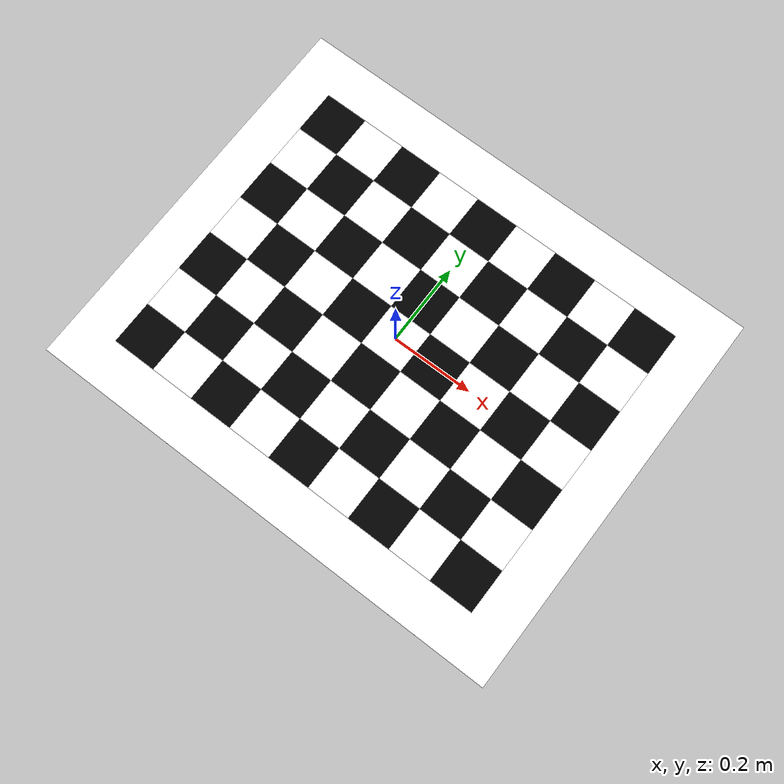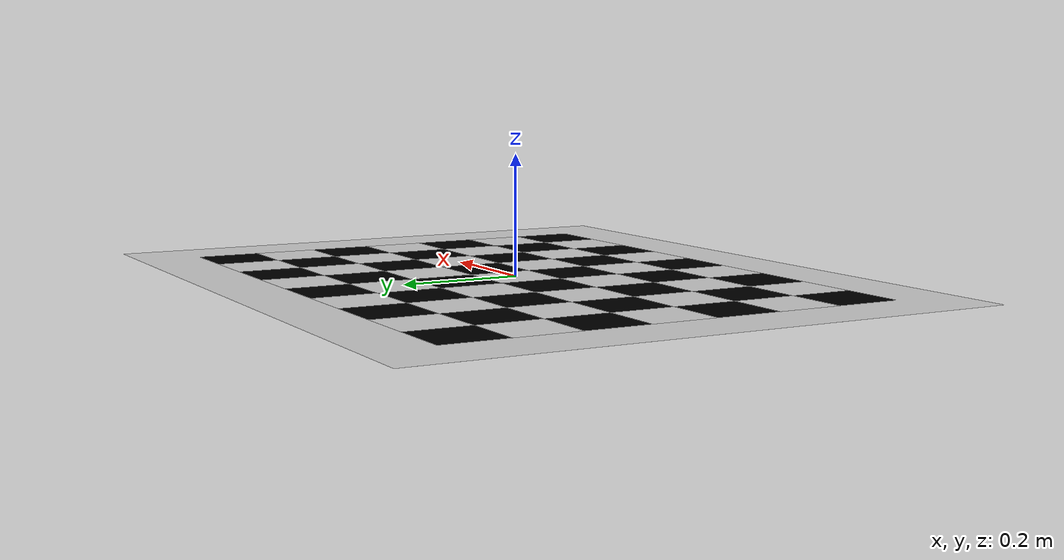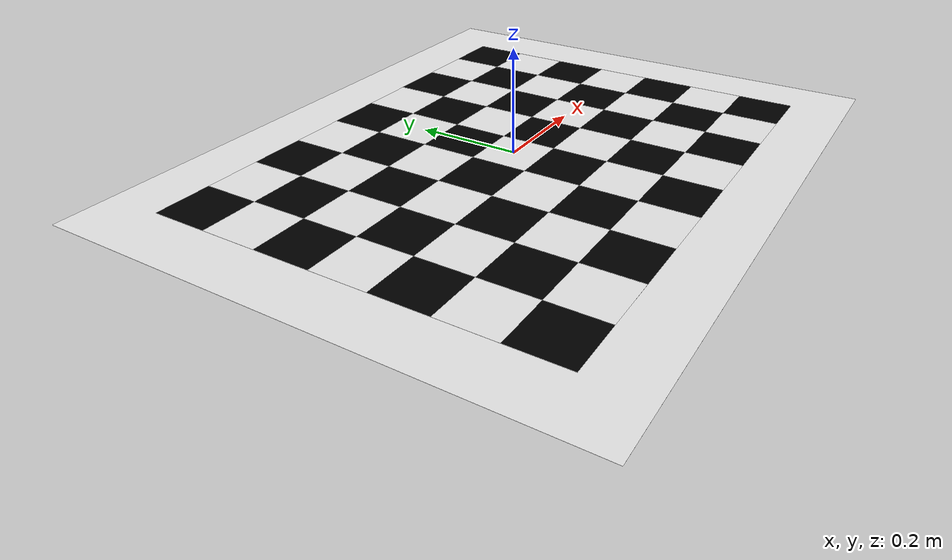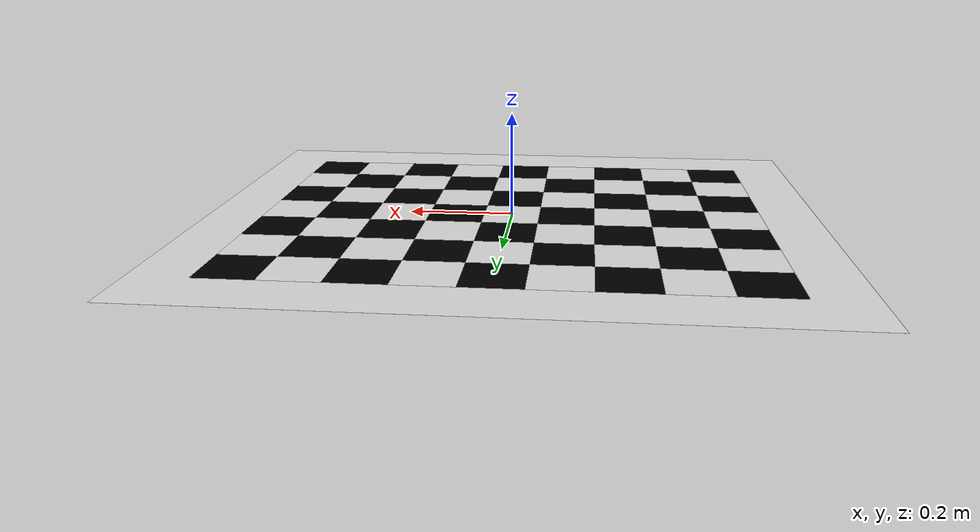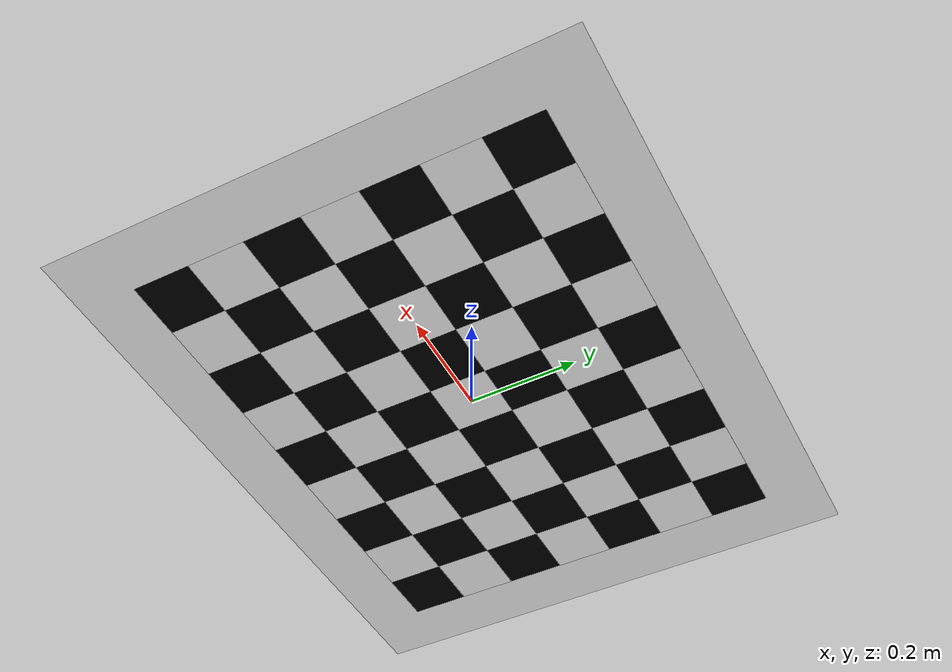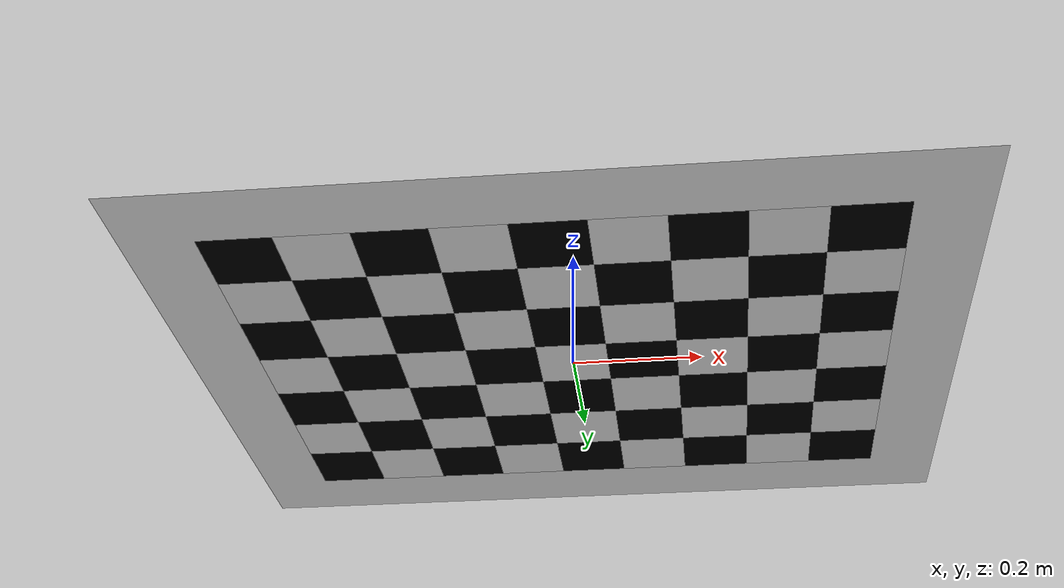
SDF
<?xml version="1.0"?>
<sdf version="1.4">
  <model name="checkerboard_9_7_0_108">
  <static>true</static>
  <link name="checkerboard_9_7_0_108_body">
      <visual name="checker_0_0">
        <pose>-0.432 -0.324 0 0 0 0</pose>
        <geometry>
          <box>
            <size>0.108 0.108 0.0002</size>
          </box>
        </geometry>
        <material>
          <ambient>0 0 0 1</ambient>
          <diffuse>0 0 0 1</diffuse>
          <specular>0 0 0 1</specular>
          <emissive>0 0 0 1</emissive>
        </material>
      </visual>
      <visual name="checker_0_1">
        <pose>-0.432 -0.216 0 0 0 0</pose>
        <geometry>
          <box>
            <size>0.108 0.108 0.0002</size>
          </box>
        </geometry>
        <material>
          <ambient>1 1 1 1</ambient>
          <diffuse>1 1 1 1</diffuse>
          <specular>1 1 1 1</specular>
          <emissive>1 1 1 1</emissive>
        </material>
      </visual>
      <visual name="checker_0_2">
        <pose>-0.432 -0.10799999999999998 0 0 0 0</pose>
        <geometry>
          <box>
            <size>0.108 0.108 0.0002</size>
          </box>
        </geometry>
        <material>
          <ambient>0 0 0 1</ambient>
          <diffuse>0 0 0 1</diffuse>
          <specular>0 0 0 1</specular>
          <emissive>0 0 0 1</emissive>
        </material>
      </visual>
      <visual name="checker_0_3">
        <pose>-0.432 0.0 0 0 0 0</pose>
        <geometry>
          <box>
            <size>0.108 0.108 0.0002</size>
          </box>
        </geometry>
        <material>
          <ambient>1 1 1 1</ambient>
          <diffuse>1 1 1 1</diffuse>
          <specular>1 1 1 1</specular>
          <emissive>1 1 1 1</emissive>
        </material>
      </visual>
      <visual name="checker_0_4">
        <pose>-0.432 0.10799999999999998 0 0 0 0</pose>
        <geometry>
          <box>
            <size>0.108 0.108 0.0002</size>
          </box>
        </geometry>
        <material>
          <ambient>0 0 0 1</ambient>
          <diffuse>0 0 0 1</diffuse>
          <specular>0 0 0 1</specular>
          <emissive>0 0 0 1</emissive>
        </material>
      </visual>
      <visual name="checker_0_5">
        <pose>-0.432 0.21600000000000008 0 0 0 0</pose>
        <geometry>
          <box>
            <size>0.108 0.108 0.0002</size>
          </box>
        </geometry>
        <material>
          <ambient>1 1 1 1</ambient>
          <diffuse>1 1 1 1</diffuse>
          <specular>1 1 1 1</specular>
          <emissive>1 1 1 1</emissive>
        </material>
      </visual>
      <visual name="checker_0_6">
        <pose>-0.432 0.32400000000000007 0 0 0 0</pose>
        <geometry>
          <box>
            <size>0.108 0.108 0.0002</size>
          </box>
        </geometry>
        <material>
          <ambient>0 0 0 1</ambient>
          <diffuse>0 0 0 1</diffuse>
          <specular>0 0 0 1</specular>
          <emissive>0 0 0 1</emissive>
        </material>
      </visual>
      <visual name="checker_1_0">
        <pose>-0.32399999999999995 -0.324 0 0 0 0</pose>
        <geometry>
          <box>
            <size>0.108 0.108 0.0002</size>
          </box>
        </geometry>
        <material>
          <ambient>1 1 1 1</ambient>
          <diffuse>1 1 1 1</diffuse>
          <specular>1 1 1 1</specular>
          <emissive>1 1 1 1</emissive>
        </material>
      </visual>
      <visual name="checker_1_1">
        <pose>-0.32399999999999995 -0.216 0 0 0 0</pose>
        <geometry>
          <box>
            <size>0.108 0.108 0.0002</size>
          </box>
        </geometry>
        <material>
          <ambient>0 0 0 1</ambient>
          <diffuse>0 0 0 1</diffuse>
          <specular>0 0 0 1</specular>
          <emissive>0 0 0 1</emissive>
        </material>
      </visual>
      <visual name="checker_1_2">
        <pose>-0.32399999999999995 -0.10799999999999998 0 0 0 0</pose>
        <geometry>
          <box>
            <size>0.108 0.108 0.0002</size>
          </box>
        </geometry>
        <material>
          <ambient>1 1 1 1</ambient>
          <diffuse>1 1 1 1</diffuse>
          <specular>1 1 1 1</specular>
          <emissive>1 1 1 1</emissive>
        </material>
      </visual>
      <visual name="checker_1_3">
        <pose>-0.32399999999999995 0.0 0 0 0 0</pose>
        <geometry>
          <box>
            <size>0.108 0.108 0.0002</size>
          </box>
        </geometry>
        <material>
          <ambient>0 0 0 1</ambient>
          <diffuse>0 0 0 1</diffuse>
          <specular>0 0 0 1</specular>
          <emissive>0 0 0 1</emissive>
        </material>
      </visual>
      <visual name="checker_1_4">
        <pose>-0.32399999999999995 0.10799999999999998 0 0 0 0</pose>
        <geometry>
          <box>
            <size>0.108 0.108 0.0002</size>
          </box>
        </geometry>
        <material>
          <ambient>1 1 1 1</ambient>
          <diffuse>1 1 1 1</diffuse>
          <specular>1 1 1 1</specular>
          <emissive>1 1 1 1</emissive>
        </material>
      </visual>
      <visual name="checker_1_5">
        <pose>-0.32399999999999995 0.21600000000000008 0 0 0 0</pose>
        <geometry>
          <box>
            <size>0.108 0.108 0.0002</size>
          </box>
        </geometry>
        <material>
          <ambient>0 0 0 1</ambient>
          <diffuse>0 0 0 1</diffuse>
          <specular>0 0 0 1</specular>
          <emissive>0 0 0 1</emissive>
        </material>
      </visual>
      <visual name="checker_1_6">
        <pose>-0.32399999999999995 0.32400000000000007 0 0 0 0</pose>
        <geometry>
          <box>
            <size>0.108 0.108 0.0002</size>
          </box>
        </geometry>
        <material>
          <ambient>1 1 1 1</ambient>
          <diffuse>1 1 1 1</diffuse>
          <specular>1 1 1 1</specular>
          <emissive>1 1 1 1</emissive>
        </material>
      </visual>
      <visual name="checker_2_0">
        <pose>-0.21599999999999997 -0.324 0 0 0 0</pose>
        <geometry>
          <box>
            <size>0.108 0.108 0.0002</size>
          </box>
        </geometry>
        <material>
          <ambient>0 0 0 1</ambient>
          <diffuse>0 0 0 1</diffuse>
          <specular>0 0 0 1</specular>
          <emissive>0 0 0 1</emissive>
        </material>
      </visual>
      <visual name="checker_2_1">
        <pose>-0.21599999999999997 -0.216 0 0 0 0</pose>
        <geometry>
          <box>
            <size>0.108 0.108 0.0002</size>
          </box>
        </geometry>
        <material>
          <ambient>1 1 1 1</ambient>
          <diffuse>1 1 1 1</diffuse>
          <specular>1 1 1 1</specular>
          <emissive>1 1 1 1</emissive>
        </material>
      </visual>
      <visual name="checker_2_2">
        <pose>-0.21599999999999997 -0.10799999999999998 0 0 0 0</pose>
        <geometry>
          <box>
            <size>0.108 0.108 0.0002</size>
          </box>
        </geometry>
        <material>
          <ambient>0 0 0 1</ambient>
          <diffuse>0 0 0 1</diffuse>
          <specular>0 0 0 1</specular>
          <emissive>0 0 0 1</emissive>
        </material>
      </visual>
      <visual name="checker_2_3">
        <pose>-0.21599999999999997 0.0 0 0 0 0</pose>
        <geometry>
          <box>
            <size>0.108 0.108 0.0002</size>
          </box>
        </geometry>
        <material>
          <ambient>1 1 1 1</ambient>
          <diffuse>1 1 1 1</diffuse>
          <specular>1 1 1 1</specular>
          <emissive>1 1 1 1</emissive>
        </material>
      </visual>
      <visual name="checker_2_4">
        <pose>-0.21599999999999997 0.10799999999999998 0 0 0 0</pose>
        <geometry>
          <box>
            <size>0.108 0.108 0.0002</size>
          </box>
        </geometry>
        <material>
          <ambient>0 0 0 1</ambient>
          <diffuse>0 0 0 1</diffuse>
          <specular>0 0 0 1</specular>
          <emissive>0 0 0 1</emissive>
        </material>
      </visual>
      <visual name="checker_2_5">
        <pose>-0.21599999999999997 0.21600000000000008 0 0 0 0</pose>
        <geometry>
          <box>
            <size>0.108 0.108 0.0002</size>
          </box>
        </geometry>
        <material>
          <ambient>1 1 1 1</ambient>
          <diffuse>1 1 1 1</diffuse>
          <specular>1 1 1 1</specular>
          <emissive>1 1 1 1</emissive>
        </material>
      </visual>
      <visual name="checker_2_6">
        <pose>-0.21599999999999997 0.32400000000000007 0 0 0 0</pose>
        <geometry>
          <box>
            <size>0.108 0.108 0.0002</size>
          </box>
        </geometry>
        <material>
          <ambient>0 0 0 1</ambient>
          <diffuse>0 0 0 1</diffuse>
          <specular>0 0 0 1</specular>
          <emissive>0 0 0 1</emissive>
        </material>
      </visual>
      <visual name="checker_3_0">
        <pose>-0.10799999999999998 -0.324 0 0 0 0</pose>
        <geometry>
          <box>
            <size>0.108 0.108 0.0002</size>
          </box>
        </geometry>
        <material>
          <ambient>1 1 1 1</ambient>
          <diffuse>1 1 1 1</diffuse>
          <specular>1 1 1 1</specular>
          <emissive>1 1 1 1</emissive>
        </material>
      </visual>
      <visual name="checker_3_1">
        <pose>-0.10799999999999998 -0.216 0 0 0 0</pose>
        <geometry>
          <box>
            <size>0.108 0.108 0.0002</size>
          </box>
        </geometry>
        <material>
          <ambient>0 0 0 1</ambient>
          <diffuse>0 0 0 1</diffuse>
          <specular>0 0 0 1</specular>
          <emissive>0 0 0 1</emissive>
        </material>
      </visual>
      <visual name="checker_3_2">
        <pose>-0.10799999999999998 -0.10799999999999998 0 0 0 0</pose>
        <geometry>
          <box>
            <size>0.108 0.108 0.0002</size>
          </box>
        </geometry>
        <material>
          <ambient>1 1 1 1</ambient>
          <diffuse>1 1 1 1</diffuse>
          <specular>1 1 1 1</specular>
          <emissive>1 1 1 1</emissive>
        </material>
      </visual>
      <visual name="checker_3_3">
        <pose>-0.10799999999999998 0.0 0 0 0 0</pose>
        <geometry>
          <box>
            <size>0.108 0.108 0.0002</size>
          </box>
        </geometry>
        <material>
          <ambient>0 0 0 1</ambient>
          <diffuse>0 0 0 1</diffuse>
          <specular>0 0 0 1</specular>
          <emissive>0 0 0 1</emissive>
        </material>
      </visual>
      <visual name="checker_3_4">
        <pose>-0.10799999999999998 0.10799999999999998 0 0 0 0</pose>
        <geometry>
          <box>
            <size>0.108 0.108 0.0002</size>
          </box>
        </geometry>
        <material>
          <ambient>1 1 1 1</ambient>
          <diffuse>1 1 1 1</diffuse>
          <specular>1 1 1 1</specular>
          <emissive>1 1 1 1</emissive>
        </material>
      </visual>
      <visual name="checker_3_5">
        <pose>-0.10799999999999998 0.21600000000000008 0 0 0 0</pose>
        <geometry>
          <box>
            <size>0.108 0.108 0.0002</size>
          </box>
        </geometry>
        <material>
          <ambient>0 0 0 1</ambient>
          <diffuse>0 0 0 1</diffuse>
          <specular>0 0 0 1</specular>
          <emissive>0 0 0 1</emissive>
        </material>
      </visual>
      <visual name="checker_3_6">
        <pose>-0.10799999999999998 0.32400000000000007 0 0 0 0</pose>
        <geometry>
          <box>
            <size>0.108 0.108 0.0002</size>
          </box>
        </geometry>
        <material>
          <ambient>1 1 1 1</ambient>
          <diffuse>1 1 1 1</diffuse>
          <specular>1 1 1 1</specular>
          <emissive>1 1 1 1</emissive>
        </material>
      </visual>
      <visual name="checker_4_0">
        <pose>0.0 -0.324 0 0 0 0</pose>
        <geometry>
          <box>
            <size>0.108 0.108 0.0002</size>
          </box>
        </geometry>
        <material>
          <ambient>0 0 0 1</ambient>
          <diffuse>0 0 0 1</diffuse>
          <specular>0 0 0 1</specular>
          <emissive>0 0 0 1</emissive>
        </material>
      </visual>
      <visual name="checker_4_1">
        <pose>0.0 -0.216 0 0 0 0</pose>
        <geometry>
          <box>
            <size>0.108 0.108 0.0002</size>
          </box>
        </geometry>
        <material>
          <ambient>1 1 1 1</ambient>
          <diffuse>1 1 1 1</diffuse>
          <specular>1 1 1 1</specular>
          <emissive>1 1 1 1</emissive>
        </material>
      </visual>
      <visual name="checker_4_2">
        <pose>0.0 -0.10799999999999998 0 0 0 0</pose>
        <geometry>
          <box>
            <size>0.108 0.108 0.0002</size>
          </box>
        </geometry>
        <material>
          <ambient>0 0 0 1</ambient>
          <diffuse>0 0 0 1</diffuse>
          <specular>0 0 0 1</specular>
          <emissive>0 0 0 1</emissive>
        </material>
      </visual>
      <visual name="checker_4_3">
        <pose>0.0 0.0 0 0 0 0</pose>
        <geometry>
          <box>
            <size>0.108 0.108 0.0002</size>
          </box>
        </geometry>
        <material>
          <ambient>1 1 1 1</ambient>
          <diffuse>1 1 1 1</diffuse>
          <specular>1 1 1 1</specular>
          <emissive>1 1 1 1</emissive>
        </material>
      </visual>
      <visual name="checker_4_4">
        <pose>0.0 0.10799999999999998 0 0 0 0</pose>
        <geometry>
          <box>
            <size>0.108 0.108 0.0002</size>
          </box>
        </geometry>
        <material>
          <ambient>0 0 0 1</ambient>
          <diffuse>0 0 0 1</diffuse>
          <specular>0 0 0 1</specular>
          <emissive>0 0 0 1</emissive>
        </material>
      </visual>
      <visual name="checker_4_5">
        <pose>0.0 0.21600000000000008 0 0 0 0</pose>
        <geometry>
          <box>
            <size>0.108 0.108 0.0002</size>
          </box>
        </geometry>
        <material>
          <ambient>1 1 1 1</ambient>
          <diffuse>1 1 1 1</diffuse>
          <specular>1 1 1 1</specular>
          <emissive>1 1 1 1</emissive>
        </material>
      </visual>
      <visual name="checker_4_6">
        <pose>0.0 0.32400000000000007 0 0 0 0</pose>
        <geometry>
          <box>
            <size>0.108 0.108 0.0002</size>
          </box>
        </geometry>
        <material>
          <ambient>0 0 0 1</ambient>
          <diffuse>0 0 0 1</diffuse>
          <specular>0 0 0 1</specular>
          <emissive>0 0 0 1</emissive>
        </material>
      </visual>
      <visual name="checker_5_0">
        <pose>0.1080000000000001 -0.324 0 0 0 0</pose>
        <geometry>
          <box>
            <size>0.108 0.108 0.0002</size>
          </box>
        </geometry>
        <material>
          <ambient>1 1 1 1</ambient>
          <diffuse>1 1 1 1</diffuse>
          <specular>1 1 1 1</specular>
          <emissive>1 1 1 1</emissive>
        </material>
      </visual>
      <visual name="checker_5_1">
        <pose>0.1080000000000001 -0.216 0 0 0 0</pose>
        <geometry>
          <box>
            <size>0.108 0.108 0.0002</size>
          </box>
        </geometry>
        <material>
          <ambient>0 0 0 1</ambient>
          <diffuse>0 0 0 1</diffuse>
          <specular>0 0 0 1</specular>
          <emissive>0 0 0 1</emissive>
        </material>
      </visual>
      <visual name="checker_5_2">
        <pose>0.1080000000000001 -0.10799999999999998 0 0 0 0</pose>
        <geometry>
          <box>
            <size>0.108 0.108 0.0002</size>
          </box>
        </geometry>
        <material>
          <ambient>1 1 1 1</ambient>
          <diffuse>1 1 1 1</diffuse>
          <specular>1 1 1 1</specular>
          <emissive>1 1 1 1</emissive>
        </material>
      </visual>
      <visual name="checker_5_3">
        <pose>0.1080000000000001 0.0 0 0 0 0</pose>
        <geometry>
          <box>
            <size>0.108 0.108 0.0002</size>
          </box>
        </geometry>
        <material>
          <ambient>0 0 0 1</ambient>
          <diffuse>0 0 0 1</diffuse>
          <specular>0 0 0 1</specular>
          <emissive>0 0 0 1</emissive>
        </material>
      </visual>
      <visual name="checker_5_4">
        <pose>0.1080000000000001 0.10799999999999998 0 0 0 0</pose>
        <geometry>
          <box>
            <size>0.108 0.108 0.0002</size>
          </box>
        </geometry>
        <material>
          <ambient>1 1 1 1</ambient>
          <diffuse>1 1 1 1</diffuse>
          <specular>1 1 1 1</specular>
          <emissive>1 1 1 1</emissive>
        </material>
      </visual>
      <visual name="checker_5_5">
        <pose>0.1080000000000001 0.21600000000000008 0 0 0 0</pose>
        <geometry>
          <box>
            <size>0.108 0.108 0.0002</size>
          </box>
        </geometry>
        <material>
          <ambient>0 0 0 1</ambient>
          <diffuse>0 0 0 1</diffuse>
          <specular>0 0 0 1</specular>
          <emissive>0 0 0 1</emissive>
        </material>
      </visual>
      <visual name="checker_5_6">
        <pose>0.1080000000000001 0.32400000000000007 0 0 0 0</pose>
        <geometry>
          <box>
            <size>0.108 0.108 0.0002</size>
          </box>
        </geometry>
        <material>
          <ambient>1 1 1 1</ambient>
          <diffuse>1 1 1 1</diffuse>
          <specular>1 1 1 1</specular>
          <emissive>1 1 1 1</emissive>
        </material>
      </visual>
      <visual name="checker_6_0">
        <pose>0.21600000000000008 -0.324 0 0 0 0</pose>
        <geometry>
          <box>
            <size>0.108 0.108 0.0002</size>
          </box>
        </geometry>
        <material>
          <ambient>0 0 0 1</ambient>
          <diffuse>0 0 0 1</diffuse>
          <specular>0 0 0 1</specular>
          <emissive>0 0 0 1</emissive>
        </material>
      </visual>
      <visual name="checker_6_1">
        <pose>0.21600000000000008 -0.216 0 0 0 0</pose>
        <geometry>
          <box>
            <size>0.108 0.108 0.0002</size>
          </box>
        </geometry>
        <material>
          <ambient>1 1 1 1</ambient>
          <diffuse>1 1 1 1</diffuse>
          <specular>1 1 1 1</specular>
          <emissive>1 1 1 1</emissive>
        </material>
      </visual>
      <visual name="checker_6_2">
        <pose>0.21600000000000008 -0.10799999999999998 0 0 0 0</pose>
        <geometry>
          <box>
            <size>0.108 0.108 0.0002</size>
          </box>
        </geometry>
        <material>
          <ambient>0 0 0 1</ambient>
          <diffuse>0 0 0 1</diffuse>
          <specular>0 0 0 1</specular>
          <emissive>0 0 0 1</emissive>
        </material>
      </visual>
      <visual name="checker_6_3">
        <pose>0.21600000000000008 0.0 0 0 0 0</pose>
        <geometry>
          <box>
            <size>0.108 0.108 0.0002</size>
          </box>
        </geometry>
        <material>
          <ambient>1 1 1 1</ambient>
          <diffuse>1 1 1 1</diffuse>
          <specular>1 1 1 1</specular>
          <emissive>1 1 1 1</emissive>
        </material>
      </visual>
      <visual name="checker_6_4">
        <pose>0.21600000000000008 0.10799999999999998 0 0 0 0</pose>
        <geometry>
          <box>
            <size>0.108 0.108 0.0002</size>
          </box>
        </geometry>
        <material>
          <ambient>0 0 0 1</ambient>
          <diffuse>0 0 0 1</diffuse>
          <specular>0 0 0 1</specular>
          <emissive>0 0 0 1</emissive>
        </material>
      </visual>
      <visual name="checker_6_5">
        <pose>0.21600000000000008 0.21600000000000008 0 0 0 0</pose>
        <geometry>
          <box>
            <size>0.108 0.108 0.0002</size>
          </box>
        </geometry>
        <material>
          <ambient>1 1 1 1</ambient>
          <diffuse>1 1 1 1</diffuse>
          <specular>1 1 1 1</specular>
          <emissive>1 1 1 1</emissive>
        </material>
      </visual>
      <visual name="checker_6_6">
        <pose>0.21600000000000008 0.32400000000000007 0 0 0 0</pose>
        <geometry>
          <box>
            <size>0.108 0.108 0.0002</size>
          </box>
        </geometry>
        <material>
          <ambient>0 0 0 1</ambient>
          <diffuse>0 0 0 1</diffuse>
          <specular>0 0 0 1</specular>
          <emissive>0 0 0 1</emissive>
        </material>
      </visual>
      <visual name="checker_7_0">
        <pose>0.32400000000000007 -0.324 0 0 0 0</pose>
        <geometry>
          <box>
            <size>0.108 0.108 0.0002</size>
          </box>
        </geometry>
        <material>
          <ambient>1 1 1 1</ambient>
          <diffuse>1 1 1 1</diffuse>
          <specular>1 1 1 1</specular>
          <emissive>1 1 1 1</emissive>
        </material>
      </visual>
      <visual name="checker_7_1">
        <pose>0.32400000000000007 -0.216 0 0 0 0</pose>
        <geometry>
          <box>
            <size>0.108 0.108 0.0002</size>
          </box>
        </geometry>
        <material>
          <ambient>0 0 0 1</ambient>
          <diffuse>0 0 0 1</diffuse>
          <specular>0 0 0 1</specular>
          <emissive>0 0 0 1</emissive>
        </material>
      </visual>
      <visual name="checker_7_2">
        <pose>0.32400000000000007 -0.10799999999999998 0 0 0 0</pose>
        <geometry>
          <box>
            <size>0.108 0.108 0.0002</size>
          </box>
        </geometry>
        <material>
          <ambient>1 1 1 1</ambient>
          <diffuse>1 1 1 1</diffuse>
          <specular>1 1 1 1</specular>
          <emissive>1 1 1 1</emissive>
        </material>
      </visual>
      <visual name="checker_7_3">
        <pose>0.32400000000000007 0.0 0 0 0 0</pose>
        <geometry>
          <box>
            <size>0.108 0.108 0.0002</size>
          </box>
        </geometry>
        <material>
          <ambient>0 0 0 1</ambient>
          <diffuse>0 0 0 1</diffuse>
          <specular>0 0 0 1</specular>
          <emissive>0 0 0 1</emissive>
        </material>
      </visual>
      <visual name="checker_7_4">
        <pose>0.32400000000000007 0.10799999999999998 0 0 0 0</pose>
        <geometry>
          <box>
            <size>0.108 0.108 0.0002</size>
          </box>
        </geometry>
        <material>
          <ambient>1 1 1 1</ambient>
          <diffuse>1 1 1 1</diffuse>
          <specular>1 1 1 1</specular>
          <emissive>1 1 1 1</emissive>
        </material>
      </visual>
      <visual name="checker_7_5">
        <pose>0.32400000000000007 0.21600000000000008 0 0 0 0</pose>
        <geometry>
          <box>
            <size>0.108 0.108 0.0002</size>
          </box>
        </geometry>
        <material>
          <ambient>0 0 0 1</ambient>
          <diffuse>0 0 0 1</diffuse>
          <specular>0 0 0 1</specular>
          <emissive>0 0 0 1</emissive>
        </material>
      </visual>
      <visual name="checker_7_6">
        <pose>0.32400000000000007 0.32400000000000007 0 0 0 0</pose>
        <geometry>
          <box>
            <size>0.108 0.108 0.0002</size>
          </box>
        </geometry>
        <material>
          <ambient>1 1 1 1</ambient>
          <diffuse>1 1 1 1</diffuse>
          <specular>1 1 1 1</specular>
          <emissive>1 1 1 1</emissive>
        </material>
      </visual>
      <visual name="checker_8_0">
        <pose>0.43200000000000005 -0.324 0 0 0 0</pose>
        <geometry>
          <box>
            <size>0.108 0.108 0.0002</size>
          </box>
        </geometry>
        <material>
          <ambient>0 0 0 1</ambient>
          <diffuse>0 0 0 1</diffuse>
          <specular>0 0 0 1</specular>
          <emissive>0 0 0 1</emissive>
        </material>
      </visual>
      <visual name="checker_8_1">
        <pose>0.43200000000000005 -0.216 0 0 0 0</pose>
        <geometry>
          <box>
            <size>0.108 0.108 0.0002</size>
          </box>
        </geometry>
        <material>
          <ambient>1 1 1 1</ambient>
          <diffuse>1 1 1 1</diffuse>
          <specular>1 1 1 1</specular>
          <emissive>1 1 1 1</emissive>
        </material>
      </visual>
      <visual name="checker_8_2">
        <pose>0.43200000000000005 -0.10799999999999998 0 0 0 0</pose>
        <geometry>
          <box>
            <size>0.108 0.108 0.0002</size>
          </box>
        </geometry>
        <material>
          <ambient>0 0 0 1</ambient>
          <diffuse>0 0 0 1</diffuse>
          <specular>0 0 0 1</specular>
          <emissive>0 0 0 1</emissive>
        </material>
      </visual>
      <visual name="checker_8_3">
        <pose>0.43200000000000005 0.0 0 0 0 0</pose>
        <geometry>
          <box>
            <size>0.108 0.108 0.0002</size>
          </box>
        </geometry>
        <material>
          <ambient>1 1 1 1</ambient>
          <diffuse>1 1 1 1</diffuse>
          <specular>1 1 1 1</specular>
          <emissive>1 1 1 1</emissive>
        </material>
      </visual>
      <visual name="checker_8_4">
        <pose>0.43200000000000005 0.10799999999999998 0 0 0 0</pose>
        <geometry>
          <box>
            <size>0.108 0.108 0.0002</size>
          </box>
        </geometry>
        <material>
          <ambient>0 0 0 1</ambient>
          <diffuse>0 0 0 1</diffuse>
          <specular>0 0 0 1</specular>
          <emissive>0 0 0 1</emissive>
        </material>
      </visual>
      <visual name="checker_8_5">
        <pose>0.43200000000000005 0.21600000000000008 0 0 0 0</pose>
        <geometry>
          <box>
            <size>0.108 0.108 0.0002</size>
          </box>
        </geometry>
        <material>
          <ambient>1 1 1 1</ambient>
          <diffuse>1 1 1 1</diffuse>
          <specular>1 1 1 1</specular>
          <emissive>1 1 1 1</emissive>
        </material>
      </visual>
      <visual name="checker_8_6">
        <pose>0.43200000000000005 0.32400000000000007 0 0 0 0</pose>
        <geometry>
          <box>
            <size>0.108 0.108 0.0002</size>
          </box>
        </geometry>
        <material>
          <ambient>0 0 0 1</ambient>
          <diffuse>0 0 0 1</diffuse>
          <specular>0 0 0 1</specular>
          <emissive>0 0 0 1</emissive>
        </material>
      </visual>
      <visual name="checker_backdrop">
        <pose>0 0 0 0 0 0</pose>
        <geometry>
          <box>
            <size>1.188 0.972 0.0001</size>
          </box>
        </geometry>
        <material>
          <ambient>1 1 1 1</ambient>
          <diffuse>1 1 1 1</diffuse>
          <specular>1 1 1 1</specular>
          <emissive>1 1 1 1</emissive>
        </material>
      </visual>
    </link>
  </model>
</sdf>
